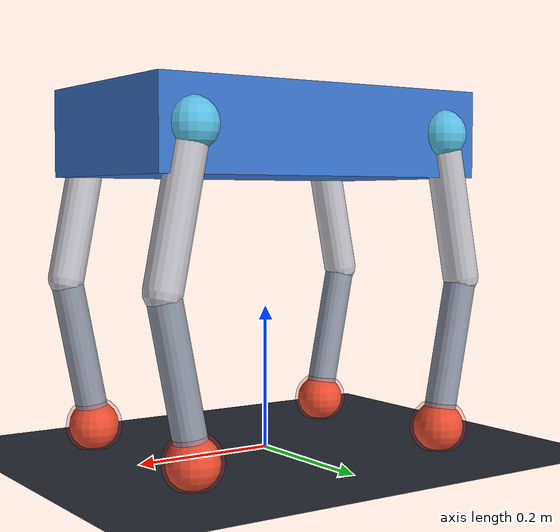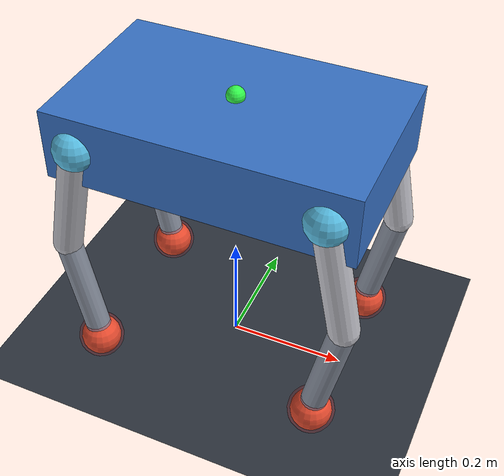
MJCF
<mujoco model="mujica-quadruped-resilient-3dof">
  <compiler angle="radian" autolimits="true"/>
  <option timestep="0.002" gravity="0 0 -9.81" integrator="RK4"/>
  <default>
    <joint damping="0.4" armature="0.018" limited="true"/>
    <geom friction="0.9 0.02 0.002" condim="3" solref="0.015 1"/>
    <motor ctrllimited="true" ctrlrange="-8 8"/>
  </default>
  <worldbody>
    <light pos="0 -1 3" dir="0 0 -1"/>
    <geom name="floor" type="plane" size="5 5 0.1" rgba="0.18 0.2 0.24 1"/>
    <body name="torso" pos="0 0 0.44">
      <freejoint name="root"/>
      <geom name="torso-geom" type="box" size="0.25 0.15 0.06" mass="4" rgba="0.22 0.45 0.78 1"/>
      <site name="imu-site" pos="0 0 0.065" size="0.015" rgba="0.2 1 0.3 1"/>
      <site name="foot-array-site" pos="0 0 0" size="0.005" rgba="0 0 0 0"/>

      <body name="leg-fl-abductor" pos="0.20 0.14 0">
        <joint name="abd-fl" axis="1 0 0" range="-0.67 0.67"/>
        <geom type="sphere" size="0.035" mass="0.08" rgba="0.35 0.75 0.9 1"/>
        <body name="leg-fl-upper">
          <joint name="hip-fl" axis="0 1 0" range="-1.22 1.22"/>
          <geom type="capsule" fromto="0 0 0 0.04 0 -0.20" size="0.025" mass="0.18" rgba="0.75 0.75 0.78 1"/>
          <body name="leg-fl-lower" pos="0.04 0 -0.20">
            <joint name="knee-fl" axis="0 1 0" range="-2.2 0.1"/>
            <geom type="capsule" fromto="0 0 0 -0.04 0 -0.20" size="0.022" mass="0.16" rgba="0.55 0.58 0.64 1"/>
            <geom name="foot-fl" type="sphere" pos="-0.04 0 -0.21" size="0.035" mass="0.06" rgba="0.9 0.35 0.2 1"/>
            <site name="foot-fl-site" pos="-0.04 0 -0.21" size="0.04" rgba="1 0.2 0.2 0.25"/>
          </body>
        </body>
      </body>
      <body name="leg-fr-abductor" pos="0.20 -0.14 0">
        <joint name="abd-fr" axis="1 0 0" range="-0.67 0.67"/>
        <geom type="sphere" size="0.035" mass="0.08" rgba="0.35 0.75 0.9 1"/>
        <body name="leg-fr-upper">
          <joint name="hip-fr" axis="0 1 0" range="-1.22 1.22"/>
          <geom type="capsule" fromto="0 0 0 0.04 0 -0.20" size="0.025" mass="0.18" rgba="0.75 0.75 0.78 1"/>
          <body name="leg-fr-lower" pos="0.04 0 -0.20">
            <joint name="knee-fr" axis="0 1 0" range="-2.2 0.1"/>
            <geom type="capsule" fromto="0 0 0 -0.04 0 -0.20" size="0.022" mass="0.16" rgba="0.55 0.58 0.64 1"/>
            <geom name="foot-fr" type="sphere" pos="-0.04 0 -0.21" size="0.035" mass="0.06" rgba="0.9 0.35 0.2 1"/>
            <site name="foot-fr-site" pos="-0.04 0 -0.21" size="0.04" rgba="1 0.2 0.2 0.25"/>
          </body>
        </body>
      </body>
      <body name="leg-rl-abductor" pos="-0.20 0.14 0">
        <joint name="abd-rl" axis="1 0 0" range="-0.67 0.67"/>
        <geom type="sphere" size="0.035" mass="0.08" rgba="0.35 0.75 0.9 1"/>
        <body name="leg-rl-upper">
          <joint name="hip-rl" axis="0 1 0" range="-1.22 1.22"/>
          <geom type="capsule" fromto="0 0 0 -0.04 0 -0.20" size="0.025" mass="0.18" rgba="0.75 0.75 0.78 1"/>
          <body name="leg-rl-lower" pos="-0.04 0 -0.20">
            <joint name="knee-rl" axis="0 1 0" range="-2.2 0.1"/>
            <geom type="capsule" fromto="0 0 0 0.04 0 -0.20" size="0.022" mass="0.16" rgba="0.55 0.58 0.64 1"/>
            <geom name="foot-rl" type="sphere" pos="0.04 0 -0.21" size="0.035" mass="0.06" rgba="0.9 0.35 0.2 1"/>
            <site name="foot-rl-site" pos="0.04 0 -0.21" size="0.04" rgba="1 0.2 0.2 0.25"/>
          </body>
        </body>
      </body>
      <body name="leg-rr-abductor" pos="-0.20 -0.14 0">
        <joint name="abd-rr" axis="1 0 0" range="-0.67 0.67"/>
        <geom type="sphere" size="0.035" mass="0.08" rgba="0.35 0.75 0.9 1"/>
        <body name="leg-rr-upper">
          <joint name="hip-rr" axis="0 1 0" range="-1.22 1.22"/>
          <geom type="capsule" fromto="0 0 0 -0.04 0 -0.20" size="0.025" mass="0.18" rgba="0.75 0.75 0.78 1"/>
          <body name="leg-rr-lower" pos="-0.04 0 -0.20">
            <joint name="knee-rr" axis="0 1 0" range="-2.2 0.1"/>
            <geom type="capsule" fromto="0 0 0 0.04 0 -0.20" size="0.022" mass="0.16" rgba="0.55 0.58 0.64 1"/>
            <geom name="foot-rr" type="sphere" pos="0.04 0 -0.21" size="0.035" mass="0.06" rgba="0.9 0.35 0.2 1"/>
            <site name="foot-rr-site" pos="0.04 0 -0.21" size="0.04" rgba="1 0.2 0.2 0.25"/>
          </body>
        </body>
      </body>
    </body>
  </worldbody>
  <sensor>
  <gyro name="body-gyro" site="imu-site"/>
  <accelerometer name="body-accelerometer" site="imu-site"/>
</sensor>

<!-- Bounded actuator history is supplied by the Runtime and adds no MJCF elements. -->

<!-- Motion commands are supplied by the Runtime and add no MJCF elements. -->

<sensor>
  <touch name="foot-force-fl" site="foot-fl-site"/>
  <touch name="foot-force-fr" site="foot-fr-site"/>
  <touch name="foot-force-rl" site="foot-rl-site"/>
  <touch name="foot-force-rr" site="foot-rr-site"/>
</sensor>

  <actuator>
    <motor name="abd-fl-motor" joint="abd-fl"/><motor name="hip-fl-motor" joint="hip-fl"/><motor name="knee-fl-motor" joint="knee-fl"/>
    <motor name="abd-fr-motor" joint="abd-fr"/><motor name="hip-fr-motor" joint="hip-fr"/><motor name="knee-fr-motor" joint="knee-fr"/>
    <motor name="abd-rl-motor" joint="abd-rl"/><motor name="hip-rl-motor" joint="hip-rl"/><motor name="knee-rl-motor" joint="knee-rl"/>
    <motor name="abd-rr-motor" joint="abd-rr"/><motor name="hip-rr-motor" joint="hip-rr"/><motor name="knee-rr-motor" joint="knee-rr"/>
  </actuator>
  <keyframe>
    <key name="home" qpos="0 0 0.44 1 0 0 0 0.15 0.15 -0.75 -0.15 0.15 -0.75 0.15 0.15 -0.75 -0.15 0.15 -0.75"/>
  </keyframe>
</mujoco>
